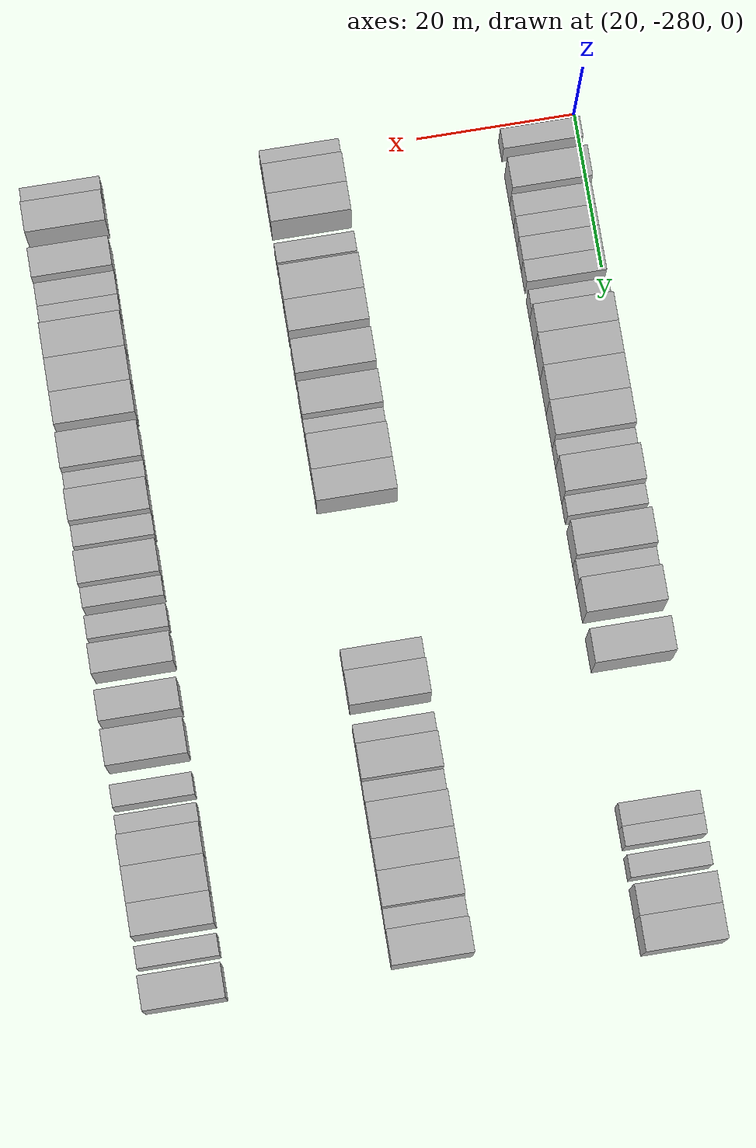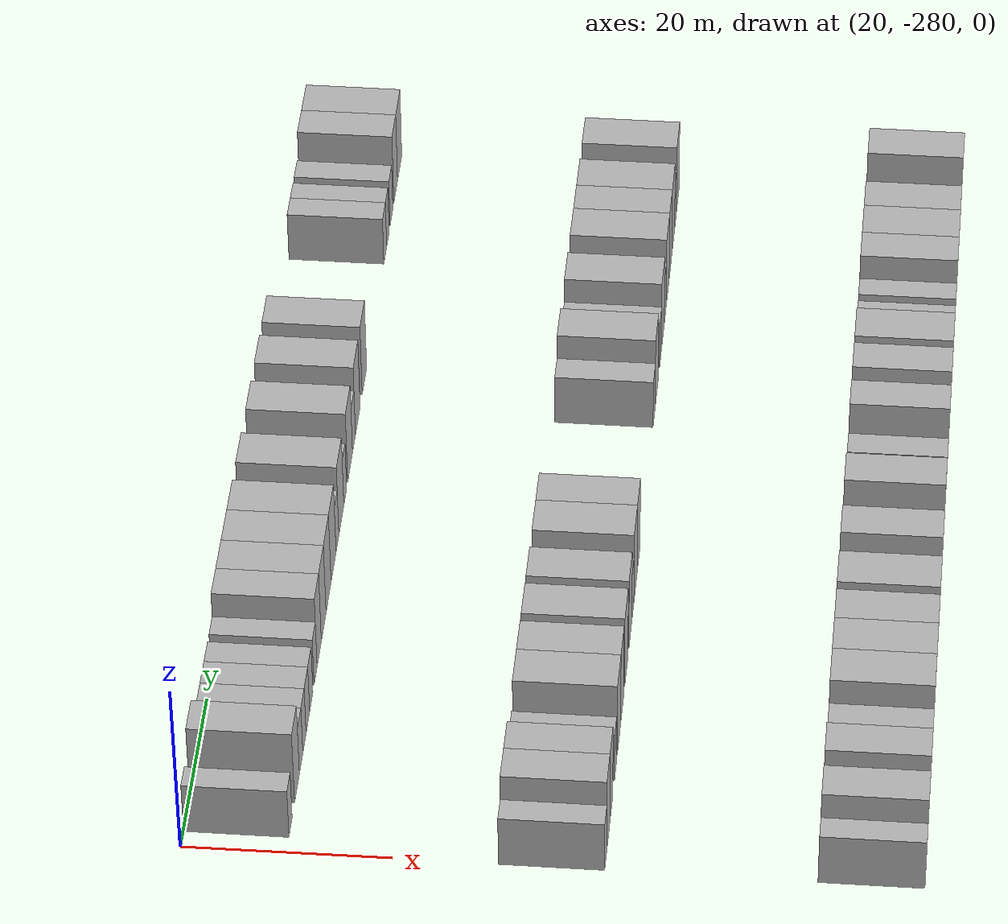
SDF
<sdf version="1.6">
 <world name="default">
  <model name="building_1">
   <static>1</static>
   <pose>25.0000 -276.7116 0 0.000000 0.000000 0.000000</pose>
   <link name="link">
    <pose>0 0 3.00 0 0 0</pose>
    <collision name="collision"><geometry><box><size>10.0000 2.5767 6.0000</size></box></geometry></collision>
    <visual name="visual">
     <cast_shadows>0</cast_shadows>
     <geometry><box><size>10.0000 2.5767 6.0000</size></box></geometry>
     <material>
      <script>
       <uri>model://HANNAS_wall/materials/scripts</uri>
       <uri>model://HANNAS_wall/materials/textures</uri>
       <name>vrc/HANNAS_wall</name>
      </script>
     </material>
    </visual>
   </link>
  </model>
  <model name="building_2">
   <static>1</static>
   <pose>25.0000 -271.4646 0 0.000000 0.000000 0.000000</pose>
   <link name="link">
    <pose>0 0 4.50 0 0 0</pose>
    <collision name="collision"><geometry><box><size>10.0000 3.9173 9.0000</size></box></geometry></collision>
    <visual name="visual">
     <cast_shadows>0</cast_shadows>
     <geometry><box><size>10.0000 3.9173 9.0000</size></box></geometry>
     <material>
      <script>
       <uri>model://HANNAS_wall/materials/scripts</uri>
       <uri>model://HANNAS_wall/materials/textures</uri>
       <name>vrc/HANNAS_wall</name>
      </script>
     </material>
    </visual>
   </link>
  </model>
  <model name="building_3">
   <static>1</static>
   <pose>25.0000 -268.0789 0 0.000000 0.000000 0.000000</pose>
   <link name="link">
    <pose>0 0 3.00 0 0 0</pose>
    <collision name="collision"><geometry><box><size>10.0000 2.8543 6.0000</size></box></geometry></collision>
    <visual name="visual">
     <cast_shadows>0</cast_shadows>
     <geometry><box><size>10.0000 2.8543 6.0000</size></box></geometry>
     <material>
      <script>
       <uri>model://HANNAS_wall/materials/scripts</uri>
       <uri>model://HANNAS_wall/materials/textures</uri>
       <name>vrc/HANNAS_wall</name>
      </script>
     </material>
    </visual>
   </link>
  </model>
  <model name="building_4">
   <static>1</static>
   <pose>25.0000 -265.3116 0 0.000000 0.000000 0.000000</pose>
   <link name="link">
    <pose>0 0 3.00 0 0 0</pose>
    <collision name="collision"><geometry><box><size>10.0000 2.6802 6.0000</size></box></geometry></collision>
    <visual name="visual">
     <cast_shadows>0</cast_shadows>
     <geometry><box><size>10.0000 2.6802 6.0000</size></box></geometry>
     <material>
      <script>
       <uri>model://HANNAS_wall/materials/scripts</uri>
       <uri>model://HANNAS_wall/materials/textures</uri>
       <name>vrc/HANNAS_wall</name>
      </script>
     </material>
    </visual>
   </link>
  </model>
  <model name="building_5">
   <static>1</static>
   <pose>25.0000 -262.4727 0 0.000000 0.000000 0.000000</pose>
   <link name="link">
    <pose>0 0 3.00 0 0 0</pose>
    <collision name="collision"><geometry><box><size>10.0000 2.9976 6.0000</size></box></geometry></collision>
    <visual name="visual">
     <cast_shadows>0</cast_shadows>
     <geometry><box><size>10.0000 2.9976 6.0000</size></box></geometry>
     <material>
      <script>
       <uri>model://HANNAS_wall/materials/scripts</uri>
       <uri>model://HANNAS_wall/materials/textures</uri>
       <name>vrc/HANNAS_wall</name>
      </script>
     </material>
    </visual>
   </link>
  </model>
  <model name="building_6">
   <static>1</static>
   <pose>25.0000 -259.5861 0 0.000000 0.000000 0.000000</pose>
   <link name="link">
    <pose>0 0 3.00 0 0 0</pose>
    <collision name="collision"><geometry><box><size>10.0000 2.7755 6.0000</size></box></geometry></collision>
    <visual name="visual">
     <cast_shadows>0</cast_shadows>
     <geometry><box><size>10.0000 2.7755 6.0000</size></box></geometry>
     <material>
      <script>
       <uri>model://HANNAS_wall/materials/scripts</uri>
       <uri>model://HANNAS_wall/materials/textures</uri>
       <name>vrc/HANNAS_wall</name>
      </script>
     </material>
    </visual>
   </link>
  </model>
  <model name="building_7">
   <static>1</static>
   <pose>25.0000 -255.9242 0 0.000000 0.000000 0.000000</pose>
   <link name="link">
    <pose>0 0 3.00 0 0 0</pose>
    <collision name="collision"><geometry><box><size>10.0000 2.5485 6.0000</size></box></geometry></collision>
    <visual name="visual">
     <cast_shadows>0</cast_shadows>
     <geometry><box><size>10.0000 2.5485 6.0000</size></box></geometry>
     <material>
      <script>
       <uri>model://HANNAS_wall/materials/scripts</uri>
       <uri>model://HANNAS_wall/materials/textures</uri>
       <name>vrc/HANNAS_wall</name>
      </script>
     </material>
    </visual>
   </link>
  </model>
  <model name="building_8">
   <static>1</static>
   <pose>25.0000 -252.8367 0 0.000000 0.000000 0.000000</pose>
   <link name="link">
    <pose>0 0 4.50 0 0 0</pose>
    <collision name="collision"><geometry><box><size>10.0000 3.6265 9.0000</size></box></geometry></collision>
    <visual name="visual">
     <cast_shadows>0</cast_shadows>
     <geometry><box><size>10.0000 3.6265 9.0000</size></box></geometry>
     <material>
      <script>
       <uri>model://HANNAS_wall/materials/scripts</uri>
       <uri>model://HANNAS_wall/materials/textures</uri>
       <name>vrc/HANNAS_wall</name>
      </script>
     </material>
    </visual>
   </link>
  </model>
  <model name="building_9">
   <static>1</static>
   <pose>25.0000 -248.9748 0 0.000000 0.000000 0.000000</pose>
   <link name="link">
    <pose>0 0 4.50 0 0 0</pose>
    <collision name="collision"><geometry><box><size>10.0000 4.0972 9.0000</size></box></geometry></collision>
    <visual name="visual">
     <cast_shadows>0</cast_shadows>
     <geometry><box><size>10.0000 4.0972 9.0000</size></box></geometry>
     <material>
      <script>
       <uri>model://HANNAS_wall/materials/scripts</uri>
       <uri>model://HANNAS_wall/materials/textures</uri>
       <name>vrc/HANNAS_wall</name>
      </script>
     </material>
    </visual>
   </link>
  </model>
  <model name="building_10">
   <static>1</static>
   <pose>25.0000 -244.7154 0 0.000000 0.000000 0.000000</pose>
   <link name="link">
    <pose>0 0 4.50 0 0 0</pose>
    <collision name="collision"><geometry><box><size>10.0000 4.4216 9.0000</size></box></geometry></collision>
    <visual name="visual">
     <cast_shadows>0</cast_shadows>
     <geometry><box><size>10.0000 4.4216 9.0000</size></box></geometry>
     <material>
      <script>
       <uri>model://HANNAS_wall/materials/scripts</uri>
       <uri>model://HANNAS_wall/materials/textures</uri>
       <name>vrc/HANNAS_wall</name>
      </script>
     </material>
    </visual>
   </link>
  </model>
  <model name="building_11">
   <static>1</static>
   <pose>25.0000 -240.3036 0 0.000000 0.000000 0.000000</pose>
   <link name="link">
    <pose>0 0 4.50 0 0 0</pose>
    <collision name="collision"><geometry><box><size>10.0000 4.4019 9.0000</size></box></geometry></collision>
    <visual name="visual">
     <cast_shadows>0</cast_shadows>
     <geometry><box><size>10.0000 4.4019 9.0000</size></box></geometry>
     <material>
      <script>
       <uri>model://HANNAS_wall/materials/scripts</uri>
       <uri>model://HANNAS_wall/materials/textures</uri>
       <name>vrc/HANNAS_wall</name>
      </script>
     </material>
    </visual>
   </link>
  </model>
  <model name="building_12">
   <static>1</static>
   <pose>25.0000 -236.8197 0 0.000000 0.000000 0.000000</pose>
   <link name="link">
    <pose>0 0 3.00 0 0 0</pose>
    <collision name="collision"><geometry><box><size>10.0000 2.5658 6.0000</size></box></geometry></collision>
    <visual name="visual">
     <cast_shadows>0</cast_shadows>
     <geometry><box><size>10.0000 2.5658 6.0000</size></box></geometry>
     <material>
      <script>
       <uri>model://HANNAS_wall/materials/scripts</uri>
       <uri>model://HANNAS_wall/materials/textures</uri>
       <name>vrc/HANNAS_wall</name>
      </script>
     </material>
    </visual>
   </link>
  </model>
  <model name="building_13">
   <static>1</static>
   <pose>25.0000 -233.3019 0 0.000000 0.000000 0.000000</pose>
   <link name="link">
    <pose>0 0 4.50 0 0 0</pose>
    <collision name="collision"><geometry><box><size>10.0000 4.4698 9.0000</size></box></geometry></collision>
    <visual name="visual">
     <cast_shadows>0</cast_shadows>
     <geometry><box><size>10.0000 4.4698 9.0000</size></box></geometry>
     <material>
      <script>
       <uri>model://HANNAS_wall/materials/scripts</uri>
       <uri>model://HANNAS_wall/materials/textures</uri>
       <name>vrc/HANNAS_wall</name>
      </script>
     </material>
    </visual>
   </link>
  </model>
  <model name="building_14">
   <static>1</static>
   <pose>25.0000 -229.7931 0 0.000000 0.000000 0.000000</pose>
   <link name="link">
    <pose>0 0 3.00 0 0 0</pose>
    <collision name="collision"><geometry><box><size>10.0000 2.5478 6.0000</size></box></geometry></collision>
    <visual name="visual">
     <cast_shadows>0</cast_shadows>
     <geometry><box><size>10.0000 2.5478 6.0000</size></box></geometry>
     <material>
      <script>
       <uri>model://HANNAS_wall/materials/scripts</uri>
       <uri>model://HANNAS_wall/materials/textures</uri>
       <name>vrc/HANNAS_wall</name>
      </script>
     </material>
    </visual>
   </link>
  </model>
  <model name="building_15">
   <static>1</static>
   <pose>25.0000 -225.3217 0 0.000000 0.000000 0.000000</pose>
   <link name="link">
    <pose>0 0 4.50 0 0 0</pose>
    <collision name="collision"><geometry><box><size>10.0000 4.3950 9.0000</size></box></geometry></collision>
    <visual name="visual">
     <cast_shadows>0</cast_shadows>
     <geometry><box><size>10.0000 4.3950 9.0000</size></box></geometry>
     <material>
      <script>
       <uri>model://HANNAS_wall/materials/scripts</uri>
       <uri>model://HANNAS_wall/materials/textures</uri>
       <name>vrc/HANNAS_wall</name>
      </script>
     </material>
    </visual>
   </link>
  </model>
  <model name="building_16">
   <static>1</static>
   <pose>25.0000 -221.7504 0 0.000000 0.000000 0.000000</pose>
   <link name="link">
    <pose>0 0 3.00 0 0 0</pose>
    <collision name="collision"><geometry><box><size>10.0000 2.7476 6.0000</size></box></geometry></collision>
    <visual name="visual">
     <cast_shadows>0</cast_shadows>
     <geometry><box><size>10.0000 2.7476 6.0000</size></box></geometry>
     <material>
      <script>
       <uri>model://HANNAS_wall/materials/scripts</uri>
       <uri>model://HANNAS_wall/materials/textures</uri>
       <name>vrc/HANNAS_wall</name>
      </script>
     </material>
    </visual>
   </link>
  </model>
  <model name="building_17">
   <static>1</static>
   <pose>25.0000 -218.2101 0 0.000000 0.000000 0.000000</pose>
   <link name="link">
    <pose>0 0 4.50 0 0 0</pose>
    <collision name="collision"><geometry><box><size>10.0000 4.3330 9.0000</size></box></geometry></collision>
    <visual name="visual">
     <cast_shadows>0</cast_shadows>
     <geometry><box><size>10.0000 4.3330 9.0000</size></box></geometry>
     <material>
      <script>
       <uri>model://HANNAS_wall/materials/scripts</uri>
       <uri>model://HANNAS_wall/materials/textures</uri>
       <name>vrc/HANNAS_wall</name>
      </script>
     </material>
    </visual>
   </link>
  </model>
  <model name="building_18">
   <static>1</static>
   <pose>25.0000 -211.9402 0 0.000000 0.000000 0.000000</pose>
   <link name="link">
    <pose>0 0 4.50 0 0 0</pose>
    <collision name="collision"><geometry><box><size>10.0000 4.2069 9.0000</size></box></geometry></collision>
    <visual name="visual">
     <cast_shadows>0</cast_shadows>
     <geometry><box><size>10.0000 4.2069 9.0000</size></box></geometry>
     <material>
      <script>
       <uri>model://HANNAS_wall/materials/scripts</uri>
       <uri>model://HANNAS_wall/materials/textures</uri>
       <name>vrc/HANNAS_wall</name>
      </script>
     </material>
    </visual>
   </link>
  </model>
  <model name="building_19">
   <static>1</static>
   <pose>25.0000 -191.6206 0 0.000000 0.000000 0.000000</pose>
   <link name="link">
    <pose>0 0 3.00 0 0 0</pose>
    <collision name="collision"><geometry><box><size>10.0000 2.8107 6.0000</size></box></geometry></collision>
    <visual name="visual">
     <cast_shadows>0</cast_shadows>
     <geometry><box><size>10.0000 2.8107 6.0000</size></box></geometry>
     <material>
      <script>
       <uri>model://HANNAS_wall/materials/scripts</uri>
       <uri>model://HANNAS_wall/materials/textures</uri>
       <name>vrc/HANNAS_wall</name>
      </script>
     </material>
    </visual>
   </link>
  </model>
  <model name="building_20">
   <static>1</static>
   <pose>25.0000 -188.9801 0 0.000000 0.000000 0.000000</pose>
   <link name="link">
    <pose>0 0 3.00 0 0 0</pose>
    <collision name="collision"><geometry><box><size>10.0000 2.4702 6.0000</size></box></geometry></collision>
    <visual name="visual">
     <cast_shadows>0</cast_shadows>
     <geometry><box><size>10.0000 2.4702 6.0000</size></box></geometry>
     <material>
      <script>
       <uri>model://HANNAS_wall/materials/scripts</uri>
       <uri>model://HANNAS_wall/materials/textures</uri>
       <name>vrc/HANNAS_wall</name>
      </script>
     </material>
    </visual>
   </link>
  </model>
  <model name="building_21">
   <static>1</static>
   <pose>25.0000 -185.3558 0 0.000000 0.000000 0.000000</pose>
   <link name="link">
    <pose>0 0 3.00 0 0 0</pose>
    <collision name="collision"><geometry><box><size>10.0000 2.7786 6.0000</size></box></geometry></collision>
    <visual name="visual">
     <cast_shadows>0</cast_shadows>
     <geometry><box><size>10.0000 2.7786 6.0000</size></box></geometry>
     <material>
      <script>
       <uri>model://HANNAS_wall/materials/scripts</uri>
       <uri>model://HANNAS_wall/materials/textures</uri>
       <name>vrc/HANNAS_wall</name>
      </script>
     </material>
    </visual>
   </link>
  </model>
  <model name="building_22">
   <static>1</static>
   <pose>25.0000 -181.0683 0 0.000000 0.000000 0.000000</pose>
   <link name="link">
    <pose>0 0 4.50 0 0 0</pose>
    <collision name="collision"><geometry><box><size>10.0000 3.7964 9.0000</size></box></geometry></collision>
    <visual name="visual">
     <cast_shadows>0</cast_shadows>
     <geometry><box><size>10.0000 3.7964 9.0000</size></box></geometry>
     <material>
      <script>
       <uri>model://HANNAS_wall/materials/scripts</uri>
       <uri>model://HANNAS_wall/materials/textures</uri>
       <name>vrc/HANNAS_wall</name>
      </script>
     </material>
    </visual>
   </link>
  </model>
  <model name="building_23">
   <static>1</static>
   <pose>25.0000 -176.9967 0 0.000000 0.000000 0.000000</pose>
   <link name="link">
    <pose>0 0 4.50 0 0 0</pose>
    <collision name="collision"><geometry><box><size>10.0000 4.3467 9.0000</size></box></geometry></collision>
    <visual name="visual">
     <cast_shadows>0</cast_shadows>
     <geometry><box><size>10.0000 4.3467 9.0000</size></box></geometry>
     <material>
      <script>
       <uri>model://HANNAS_wall/materials/scripts</uri>
       <uri>model://HANNAS_wall/materials/textures</uri>
       <name>vrc/HANNAS_wall</name>
      </script>
     </material>
    </visual>
   </link>
  </model>
  <model name="building_140">
   <static>1</static>
   <pose>55.0000 -278.7158 0 0.000000 0.000000 0.000000</pose>
   <link name="link">
    <pose>0 0 3.00 0 0 0</pose>
    <collision name="collision"><geometry><box><size>10.0000 2.5685 6.0000</size></box></geometry></collision>
    <visual name="visual">
     <cast_shadows>0</cast_shadows>
     <geometry><box><size>10.0000 2.5685 6.0000</size></box></geometry>
     <material>
      <script>
       <uri>model://HANNAS_wall/materials/scripts</uri>
       <uri>model://HANNAS_wall/materials/textures</uri>
       <name>vrc/HANNAS_wall</name>
      </script>
     </material>
    </visual>
   </link>
  </model>
  <model name="building_141">
   <static>1</static>
   <pose>55.0000 -275.5282 0 0.000000 0.000000 0.000000</pose>
   <link name="link">
    <pose>0 0 4.50 0 0 0</pose>
    <collision name="collision"><geometry><box><size>10.0000 3.8067 9.0000</size></box></geometry></collision>
    <visual name="visual">
     <cast_shadows>0</cast_shadows>
     <geometry><box><size>10.0000 3.8067 9.0000</size></box></geometry>
     <material>
      <script>
       <uri>model://HANNAS_wall/materials/scripts</uri>
       <uri>model://HANNAS_wall/materials/textures</uri>
       <name>vrc/HANNAS_wall</name>
      </script>
     </material>
    </visual>
   </link>
  </model>
  <model name="building_142">
   <static>1</static>
   <pose>55.0000 -271.8176 0 0.000000 0.000000 0.000000</pose>
   <link name="link">
    <pose>0 0 4.50 0 0 0</pose>
    <collision name="collision"><geometry><box><size>10.0000 3.6144 9.0000</size></box></geometry></collision>
    <visual name="visual">
     <cast_shadows>0</cast_shadows>
     <geometry><box><size>10.0000 3.6144 9.0000</size></box></geometry>
     <material>
      <script>
       <uri>model://HANNAS_wall/materials/scripts</uri>
       <uri>model://HANNAS_wall/materials/textures</uri>
       <name>vrc/HANNAS_wall</name>
      </script>
     </material>
    </visual>
   </link>
  </model>
  <model name="building_143">
   <static>1</static>
   <pose>55.0000 -266.7503 0 0.000000 0.000000 0.000000</pose>
   <link name="link">
    <pose>0 0 3.00 0 0 0</pose>
    <collision name="collision"><geometry><box><size>10.0000 2.5202 6.0000</size></box></geometry></collision>
    <visual name="visual">
     <cast_shadows>0</cast_shadows>
     <geometry><box><size>10.0000 2.5202 6.0000</size></box></geometry>
     <material>
      <script>
       <uri>model://HANNAS_wall/materials/scripts</uri>
       <uri>model://HANNAS_wall/materials/textures</uri>
       <name>vrc/HANNAS_wall</name>
      </script>
     </material>
    </visual>
   </link>
  </model>
  <model name="building_144">
   <static>1</static>
   <pose>55.0000 -262.2801 0 0.000000 0.000000 0.000000</pose>
   <link name="link">
    <pose>0 0 4.50 0 0 0</pose>
    <collision name="collision"><geometry><box><size>10.0000 4.4203 9.0000</size></box></geometry></collision>
    <visual name="visual">
     <cast_shadows>0</cast_shadows>
     <geometry><box><size>10.0000 4.4203 9.0000</size></box></geometry>
     <material>
      <script>
       <uri>model://HANNAS_wall/materials/scripts</uri>
       <uri>model://HANNAS_wall/materials/textures</uri>
       <name>vrc/HANNAS_wall</name>
      </script>
     </material>
    </visual>
   </link>
  </model>
  <model name="building_145">
   <static>1</static>
   <pose>55.0000 -258.0678 0 0.000000 0.000000 0.000000</pose>
   <link name="link">
    <pose>0 0 4.50 0 0 0</pose>
    <collision name="collision"><geometry><box><size>10.0000 4.0042 9.0000</size></box></geometry></collision>
    <visual name="visual">
     <cast_shadows>0</cast_shadows>
     <geometry><box><size>10.0000 4.0042 9.0000</size></box></geometry>
     <material>
      <script>
       <uri>model://HANNAS_wall/materials/scripts</uri>
       <uri>model://HANNAS_wall/materials/textures</uri>
       <name>vrc/HANNAS_wall</name>
      </script>
     </material>
    </visual>
   </link>
  </model>
  <model name="building_146">
   <static>1</static>
   <pose>55.0000 -252.9015 0 0.000000 0.000000 0.000000</pose>
   <link name="link">
    <pose>0 0 4.50 0 0 0</pose>
    <collision name="collision"><geometry><box><size>10.0000 4.3285 9.0000</size></box></geometry></collision>
    <visual name="visual">
     <cast_shadows>0</cast_shadows>
     <geometry><box><size>10.0000 4.3285 9.0000</size></box></geometry>
     <material>
      <script>
       <uri>model://HANNAS_wall/materials/scripts</uri>
       <uri>model://HANNAS_wall/materials/textures</uri>
       <name>vrc/HANNAS_wall</name>
      </script>
     </material>
    </visual>
   </link>
  </model>
  <model name="building_147">
   <static>1</static>
   <pose>55.0000 -247.6392 0 0.000000 0.000000 0.000000</pose>
   <link name="link">
    <pose>0 0 4.50 0 0 0</pose>
    <collision name="collision"><geometry><box><size>10.0000 4.1962 9.0000</size></box></geometry></collision>
    <visual name="visual">
     <cast_shadows>0</cast_shadows>
     <geometry><box><size>10.0000 4.1962 9.0000</size></box></geometry>
     <material>
      <script>
       <uri>model://HANNAS_wall/materials/scripts</uri>
       <uri>model://HANNAS_wall/materials/textures</uri>
       <name>vrc/HANNAS_wall</name>
      </script>
     </material>
    </visual>
   </link>
  </model>
  <model name="building_148">
   <static>1</static>
   <pose>55.0000 -244.3315 0 0.000000 0.000000 0.000000</pose>
   <link name="link">
    <pose>0 0 3.00 0 0 0</pose>
    <collision name="collision"><geometry><box><size>10.0000 2.4191 6.0000</size></box></geometry></collision>
    <visual name="visual">
     <cast_shadows>0</cast_shadows>
     <geometry><box><size>10.0000 2.4191 6.0000</size></box></geometry>
     <material>
      <script>
       <uri>model://HANNAS_wall/materials/scripts</uri>
       <uri>model://HANNAS_wall/materials/textures</uri>
       <name>vrc/HANNAS_wall</name>
      </script>
     </material>
    </visual>
   </link>
  </model>
  <model name="building_149">
   <static>1</static>
   <pose>55.0000 -240.9022 0 0.000000 0.000000 0.000000</pose>
   <link name="link">
    <pose>0 0 4.50 0 0 0</pose>
    <collision name="collision"><geometry><box><size>10.0000 4.4395 9.0000</size></box></geometry></collision>
    <visual name="visual">
     <cast_shadows>0</cast_shadows>
     <geometry><box><size>10.0000 4.4395 9.0000</size></box></geometry>
     <material>
      <script>
       <uri>model://HANNAS_wall/materials/scripts</uri>
       <uri>model://HANNAS_wall/materials/textures</uri>
       <name>vrc/HANNAS_wall</name>
      </script>
     </material>
    </visual>
   </link>
  </model>
  <model name="building_150">
   <static>1</static>
   <pose>55.0000 -236.7105 0 0.000000 0.000000 0.000000</pose>
   <link name="link">
    <pose>0 0 4.50 0 0 0</pose>
    <collision name="collision"><geometry><box><size>10.0000 3.9438 9.0000</size></box></geometry></collision>
    <visual name="visual">
     <cast_shadows>0</cast_shadows>
     <geometry><box><size>10.0000 3.9438 9.0000</size></box></geometry>
     <material>
      <script>
       <uri>model://HANNAS_wall/materials/scripts</uri>
       <uri>model://HANNAS_wall/materials/textures</uri>
       <name>vrc/HANNAS_wall</name>
      </script>
     </material>
    </visual>
   </link>
  </model>
  <model name="building_151">
   <static>1</static>
   <pose>55.0000 -215.2692 0 0.000000 0.000000 0.000000</pose>
   <link name="link">
    <pose>0 0 3.00 0 0 0</pose>
    <collision name="collision"><geometry><box><size>10.0000 2.9797 6.0000</size></box></geometry></collision>
    <visual name="visual">
     <cast_shadows>0</cast_shadows>
     <geometry><box><size>10.0000 2.9797 6.0000</size></box></geometry>
     <material>
      <script>
       <uri>model://HANNAS_wall/materials/scripts</uri>
       <uri>model://HANNAS_wall/materials/textures</uri>
       <name>vrc/HANNAS_wall</name>
      </script>
     </material>
    </visual>
   </link>
  </model>
  <model name="building_152">
   <static>1</static>
   <pose>55.0000 -211.6312 0 0.000000 0.000000 0.000000</pose>
   <link name="link">
    <pose>0 0 4.50 0 0 0</pose>
    <collision name="collision"><geometry><box><size>10.0000 4.2963 9.0000</size></box></geometry></collision>
    <visual name="visual">
     <cast_shadows>0</cast_shadows>
     <geometry><box><size>10.0000 4.2963 9.0000</size></box></geometry>
     <material>
      <script>
       <uri>model://HANNAS_wall/materials/scripts</uri>
       <uri>model://HANNAS_wall/materials/textures</uri>
       <name>vrc/HANNAS_wall</name>
      </script>
     </material>
    </visual>
   </link>
  </model>
  <model name="building_153">
   <static>1</static>
   <pose>55.0000 -206.1670 0 0.000000 0.000000 0.000000</pose>
   <link name="link">
    <pose>0 0 3.00 0 0 0</pose>
    <collision name="collision"><geometry><box><size>10.0000 2.6321 6.0000</size></box></geometry></collision>
    <visual name="visual">
     <cast_shadows>0</cast_shadows>
     <geometry><box><size>10.0000 2.6321 6.0000</size></box></geometry>
     <material>
      <script>
       <uri>model://HANNAS_wall/materials/scripts</uri>
       <uri>model://HANNAS_wall/materials/textures</uri>
       <name>vrc/HANNAS_wall</name>
      </script>
     </material>
    </visual>
   </link>
  </model>
  <model name="building_154">
   <static>1</static>
   <pose>55.0000 -202.6768 0 0.000000 0.000000 0.000000</pose>
   <link name="link">
    <pose>0 0 4.50 0 0 0</pose>
    <collision name="collision"><geometry><box><size>10.0000 4.3485 9.0000</size></box></geometry></collision>
    <visual name="visual">
     <cast_shadows>0</cast_shadows>
     <geometry><box><size>10.0000 4.3485 9.0000</size></box></geometry>
     <material>
      <script>
       <uri>model://HANNAS_wall/materials/scripts</uri>
       <uri>model://HANNAS_wall/materials/textures</uri>
       <name>vrc/HANNAS_wall</name>
      </script>
     </material>
    </visual>
   </link>
  </model>
  <model name="building_155">
   <static>1</static>
   <pose>55.0000 -199.1035 0 0.000000 0.000000 0.000000</pose>
   <link name="link">
    <pose>0 0 3.00 0 0 0</pose>
    <collision name="collision"><geometry><box><size>10.0000 2.7980 6.0000</size></box></geometry></collision>
    <visual name="visual">
     <cast_shadows>0</cast_shadows>
     <geometry><box><size>10.0000 2.7980 6.0000</size></box></geometry>
     <material>
      <script>
       <uri>model://HANNAS_wall/materials/scripts</uri>
       <uri>model://HANNAS_wall/materials/textures</uri>
       <name>vrc/HANNAS_wall</name>
      </script>
     </material>
    </visual>
   </link>
  </model>
  <model name="building_156">
   <static>1</static>
   <pose>55.0000 -195.4867 0 0.000000 0.000000 0.000000</pose>
   <link name="link">
    <pose>0 0 4.50 0 0 0</pose>
    <collision name="collision"><geometry><box><size>10.0000 4.4357 9.0000</size></box></geometry></collision>
    <visual name="visual">
     <cast_shadows>0</cast_shadows>
     <geometry><box><size>10.0000 4.4357 9.0000</size></box></geometry>
     <material>
      <script>
       <uri>model://HANNAS_wall/materials/scripts</uri>
       <uri>model://HANNAS_wall/materials/textures</uri>
       <name>vrc/HANNAS_wall</name>
      </script>
     </material>
    </visual>
   </link>
  </model>
  <model name="building_157">
   <static>1</static>
   <pose>55.0000 -191.3477 0 0.000000 0.000000 0.000000</pose>
   <link name="link">
    <pose>0 0 4.50 0 0 0</pose>
    <collision name="collision"><geometry><box><size>10.0000 3.8424 9.0000</size></box></geometry></collision>
    <visual name="visual">
     <cast_shadows>0</cast_shadows>
     <geometry><box><size>10.0000 3.8424 9.0000</size></box></geometry>
     <material>
      <script>
       <uri>model://HANNAS_wall/materials/scripts</uri>
       <uri>model://HANNAS_wall/materials/textures</uri>
       <name>vrc/HANNAS_wall</name>
      </script>
     </material>
    </visual>
   </link>
  </model>
  <model name="building_158">
   <static>1</static>
   <pose>55.0000 -187.2485 0 0.000000 0.000000 0.000000</pose>
   <link name="link">
    <pose>0 0 4.50 0 0 0</pose>
    <collision name="collision"><geometry><box><size>10.0000 4.3559 9.0000</size></box></geometry></collision>
    <visual name="visual">
     <cast_shadows>0</cast_shadows>
     <geometry><box><size>10.0000 4.3559 9.0000</size></box></geometry>
     <material>
      <script>
       <uri>model://HANNAS_wall/materials/scripts</uri>
       <uri>model://HANNAS_wall/materials/textures</uri>
       <name>vrc/HANNAS_wall</name>
      </script>
     </material>
    </visual>
   </link>
  </model>
  <model name="building_159">
   <static>1</static>
   <pose>55.0000 -183.7458 0 0.000000 0.000000 0.000000</pose>
   <link name="link">
    <pose>0 0 3.00 0 0 0</pose>
    <collision name="collision"><geometry><box><size>10.0000 2.6496 6.0000</size></box></geometry></collision>
    <visual name="visual">
     <cast_shadows>0</cast_shadows>
     <geometry><box><size>10.0000 2.6496 6.0000</size></box></geometry>
     <material>
      <script>
       <uri>model://HANNAS_wall/materials/scripts</uri>
       <uri>model://HANNAS_wall/materials/textures</uri>
       <name>vrc/HANNAS_wall</name>
      </script>
     </material>
    </visual>
   </link>
  </model>
  <model name="building_160">
   <static>1</static>
   <pose>55.0000 -180.2444 0 0.000000 0.000000 0.000000</pose>
   <link name="link">
    <pose>0 0 4.50 0 0 0</pose>
    <collision name="collision"><geometry><box><size>10.0000 4.3532 9.0000</size></box></geometry></collision>
    <visual name="visual">
     <cast_shadows>0</cast_shadows>
     <geometry><box><size>10.0000 4.3532 9.0000</size></box></geometry>
     <material>
      <script>
       <uri>model://HANNAS_wall/materials/scripts</uri>
       <uri>model://HANNAS_wall/materials/textures</uri>
       <name>vrc/HANNAS_wall</name>
      </script>
     </material>
    </visual>
   </link>
  </model>
  <model name="building_280">
   <static>1</static>
   <pose>85.0000 -278.7177 0 0.000000 0.000000 0.000000</pose>
   <link name="link">
    <pose>0 0 3.00 0 0 0</pose>
    <collision name="collision"><geometry><box><size>10.0000 2.5645 6.0000</size></box></geometry></collision>
    <visual name="visual">
     <cast_shadows>0</cast_shadows>
     <geometry><box><size>10.0000 2.5645 6.0000</size></box></geometry>
     <material>
      <script>
       <uri>model://HANNAS_wall/materials/scripts</uri>
       <uri>model://HANNAS_wall/materials/textures</uri>
       <name>vrc/HANNAS_wall</name>
      </script>
     </material>
    </visual>
   </link>
  </model>
  <model name="building_281">
   <static>1</static>
   <pose>85.0000 -275.4808 0 0.000000 0.000000 0.000000</pose>
   <link name="link">
    <pose>0 0 4.50 0 0 0</pose>
    <collision name="collision"><geometry><box><size>10.0000 3.9093 9.0000</size></box></geometry></collision>
    <visual name="visual">
     <cast_shadows>0</cast_shadows>
     <geometry><box><size>10.0000 3.9093 9.0000</size></box></geometry>
     <material>
      <script>
       <uri>model://HANNAS_wall/materials/scripts</uri>
       <uri>model://HANNAS_wall/materials/textures</uri>
       <name>vrc/HANNAS_wall</name>
      </script>
     </material>
    </visual>
   </link>
  </model>
  <model name="building_282">
   <static>1</static>
   <pose>85.0000 -269.6559 0 0.000000 0.000000 0.000000</pose>
   <link name="link">
    <pose>0 0 4.50 0 0 0</pose>
    <collision name="collision"><geometry><box><size>10.0000 3.7406 9.0000</size></box></geometry></collision>
    <visual name="visual">
     <cast_shadows>0</cast_shadows>
     <geometry><box><size>10.0000 3.7406 9.0000</size></box></geometry>
     <material>
      <script>
       <uri>model://HANNAS_wall/materials/scripts</uri>
       <uri>model://HANNAS_wall/materials/textures</uri>
       <name>vrc/HANNAS_wall</name>
      </script>
     </material>
    </visual>
   </link>
  </model>
  <model name="building_283">
   <static>1</static>
   <pose>85.0000 -266.3055 0 0.000000 0.000000 0.000000</pose>
   <link name="link">
    <pose>0 0 3.00 0 0 0</pose>
    <collision name="collision"><geometry><box><size>10.0000 2.9601 6.0000</size></box></geometry></collision>
    <visual name="visual">
     <cast_shadows>0</cast_shadows>
     <geometry><box><size>10.0000 2.9601 6.0000</size></box></geometry>
     <material>
      <script>
       <uri>model://HANNAS_wall/materials/scripts</uri>
       <uri>model://HANNAS_wall/materials/textures</uri>
       <name>vrc/HANNAS_wall</name>
      </script>
     </material>
    </visual>
   </link>
  </model>
  <model name="building_284">
   <static>1</static>
   <pose>85.0000 -263.4182 0 0.000000 0.000000 0.000000</pose>
   <link name="link">
    <pose>0 0 3.00 0 0 0</pose>
    <collision name="collision"><geometry><box><size>10.0000 2.8144 6.0000</size></box></geometry></collision>
    <visual name="visual">
     <cast_shadows>0</cast_shadows>
     <geometry><box><size>10.0000 2.8144 6.0000</size></box></geometry>
     <material>
      <script>
       <uri>model://HANNAS_wall/materials/scripts</uri>
       <uri>model://HANNAS_wall/materials/textures</uri>
       <name>vrc/HANNAS_wall</name>
      </script>
     </material>
    </visual>
   </link>
  </model>
  <model name="building_285">
   <static>1</static>
   <pose>85.0000 -259.7780 0 0.000000 0.000000 0.000000</pose>
   <link name="link">
    <pose>0 0 4.50 0 0 0</pose>
    <collision name="collision"><geometry><box><size>10.0000 4.4659 9.0000</size></box></geometry></collision>
    <visual name="visual">
     <cast_shadows>0</cast_shadows>
     <geometry><box><size>10.0000 4.4659 9.0000</size></box></geometry>
     <material>
      <script>
       <uri>model://HANNAS_wall/materials/scripts</uri>
       <uri>model://HANNAS_wall/materials/textures</uri>
       <name>vrc/HANNAS_wall</name>
      </script>
     </material>
    </visual>
   </link>
  </model>
  <model name="building_286">
   <static>1</static>
   <pose>85.0000 -255.3976 0 0.000000 0.000000 0.000000</pose>
   <link name="link">
    <pose>0 0 4.50 0 0 0</pose>
    <collision name="collision"><geometry><box><size>10.0000 4.2950 9.0000</size></box></geometry></collision>
    <visual name="visual">
     <cast_shadows>0</cast_shadows>
     <geometry><box><size>10.0000 4.2950 9.0000</size></box></geometry>
     <material>
      <script>
       <uri>model://HANNAS_wall/materials/scripts</uri>
       <uri>model://HANNAS_wall/materials/textures</uri>
       <name>vrc/HANNAS_wall</name>
      </script>
     </material>
    </visual>
   </link>
  </model>
  <model name="building_287">
   <static>1</static>
   <pose>85.0000 -251.2191 0 0.000000 0.000000 0.000000</pose>
   <link name="link">
    <pose>0 0 4.50 0 0 0</pose>
    <collision name="collision"><geometry><box><size>10.0000 4.0620 9.0000</size></box></geometry></collision>
    <visual name="visual">
     <cast_shadows>0</cast_shadows>
     <geometry><box><size>10.0000 4.0620 9.0000</size></box></geometry>
     <material>
      <script>
       <uri>model://HANNAS_wall/materials/scripts</uri>
       <uri>model://HANNAS_wall/materials/textures</uri>
       <name>vrc/HANNAS_wall</name>
      </script>
     </material>
    </visual>
   </link>
  </model>
  <model name="building_288">
   <static>1</static>
   <pose>85.0000 -245.9455 0 0.000000 0.000000 0.000000</pose>
   <link name="link">
    <pose>0 0 4.50 0 0 0</pose>
    <collision name="collision"><geometry><box><size>10.0000 4.4852 9.0000</size></box></geometry></collision>
    <visual name="visual">
     <cast_shadows>0</cast_shadows>
     <geometry><box><size>10.0000 4.4852 9.0000</size></box></geometry>
     <material>
      <script>
       <uri>model://HANNAS_wall/materials/scripts</uri>
       <uri>model://HANNAS_wall/materials/textures</uri>
       <name>vrc/HANNAS_wall</name>
      </script>
     </material>
    </visual>
   </link>
  </model>
  <model name="building_289">
   <static>1</static>
   <pose>85.0000 -242.3828 0 0.000000 0.000000 0.000000</pose>
   <link name="link">
    <pose>0 0 3.00 0 0 0</pose>
    <collision name="collision"><geometry><box><size>10.0000 2.6401 6.0000</size></box></geometry></collision>
    <visual name="visual">
     <cast_shadows>0</cast_shadows>
     <geometry><box><size>10.0000 2.6401 6.0000</size></box></geometry>
     <material>
      <script>
       <uri>model://HANNAS_wall/materials/scripts</uri>
       <uri>model://HANNAS_wall/materials/textures</uri>
       <name>vrc/HANNAS_wall</name>
      </script>
     </material>
    </visual>
   </link>
  </model>
  <model name="building_290">
   <static>1</static>
   <pose>85.0000 -239.0677 0 0.000000 0.000000 0.000000</pose>
   <link name="link">
    <pose>0 0 4.50 0 0 0</pose>
    <collision name="collision"><geometry><box><size>10.0000 3.9901 9.0000</size></box></geometry></collision>
    <visual name="visual">
     <cast_shadows>0</cast_shadows>
     <geometry><box><size>10.0000 3.9901 9.0000</size></box></geometry>
     <material>
      <script>
       <uri>model://HANNAS_wall/materials/scripts</uri>
       <uri>model://HANNAS_wall/materials/textures</uri>
       <name>vrc/HANNAS_wall</name>
      </script>
     </material>
    </visual>
   </link>
  </model>
  <model name="building_291">
   <static>1</static>
   <pose>85.0000 -235.7290 0 0.000000 0.000000 0.000000</pose>
   <link name="link">
    <pose>0 0 3.00 0 0 0</pose>
    <collision name="collision"><geometry><box><size>10.0000 2.6873 6.0000</size></box></geometry></collision>
    <visual name="visual">
     <cast_shadows>0</cast_shadows>
     <geometry><box><size>10.0000 2.6873 6.0000</size></box></geometry>
     <material>
      <script>
       <uri>model://HANNAS_wall/materials/scripts</uri>
       <uri>model://HANNAS_wall/materials/textures</uri>
       <name>vrc/HANNAS_wall</name>
      </script>
     </material>
    </visual>
   </link>
  </model>
  <model name="building_292">
   <static>1</static>
   <pose>85.0000 -231.3481 0 0.000000 0.000000 0.000000</pose>
   <link name="link">
    <pose>0 0 4.50 0 0 0</pose>
    <collision name="collision"><geometry><box><size>10.0000 4.0745 9.0000</size></box></geometry></collision>
    <visual name="visual">
     <cast_shadows>0</cast_shadows>
     <geometry><box><size>10.0000 4.0745 9.0000</size></box></geometry>
     <material>
      <script>
       <uri>model://HANNAS_wall/materials/scripts</uri>
       <uri>model://HANNAS_wall/materials/textures</uri>
       <name>vrc/HANNAS_wall</name>
      </script>
     </material>
    </visual>
   </link>
  </model>
  <model name="building_293">
   <static>1</static>
   <pose>85.0000 -228.0592 0 0.000000 0.000000 0.000000</pose>
   <link name="link">
    <pose>0 0 3.00 0 0 0</pose>
    <collision name="collision"><geometry><box><size>10.0000 2.5033 6.0000</size></box></geometry></collision>
    <visual name="visual">
     <cast_shadows>0</cast_shadows>
     <geometry><box><size>10.0000 2.5033 6.0000</size></box></geometry>
     <material>
      <script>
       <uri>model://HANNAS_wall/materials/scripts</uri>
       <uri>model://HANNAS_wall/materials/textures</uri>
       <name>vrc/HANNAS_wall</name>
      </script>
     </material>
    </visual>
   </link>
  </model>
  <model name="building_294">
   <static>1</static>
   <pose>85.0000 -224.3742 0 0.000000 0.000000 0.000000</pose>
   <link name="link">
    <pose>0 0 3.00 0 0 0</pose>
    <collision name="collision"><geometry><box><size>10.0000 2.8668 6.0000</size></box></geometry></collision>
    <visual name="visual">
     <cast_shadows>0</cast_shadows>
     <geometry><box><size>10.0000 2.8668 6.0000</size></box></geometry>
     <material>
      <script>
       <uri>model://HANNAS_wall/materials/scripts</uri>
       <uri>model://HANNAS_wall/materials/textures</uri>
       <name>vrc/HANNAS_wall</name>
      </script>
     </material>
    </visual>
   </link>
  </model>
  <model name="building_295">
   <static>1</static>
   <pose>85.0000 -220.0855 0 0.000000 0.000000 0.000000</pose>
   <link name="link">
    <pose>0 0 4.50 0 0 0</pose>
    <collision name="collision"><geometry><box><size>10.0000 3.7106 9.0000</size></box></geometry></collision>
    <visual name="visual">
     <cast_shadows>0</cast_shadows>
     <geometry><box><size>10.0000 3.7106 9.0000</size></box></geometry>
     <material>
      <script>
       <uri>model://HANNAS_wall/materials/scripts</uri>
       <uri>model://HANNAS_wall/materials/textures</uri>
       <name>vrc/HANNAS_wall</name>
      </script>
     </material>
    </visual>
   </link>
  </model>
  <model name="building_296">
   <static>1</static>
   <pose>85.0000 -214.3303 0 0.000000 0.000000 0.000000</pose>
   <link name="link">
    <pose>0 0 4.50 0 0 0</pose>
    <collision name="collision"><geometry><box><size>10.0000 3.7998 9.0000</size></box></geometry></collision>
    <visual name="visual">
     <cast_shadows>0</cast_shadows>
     <geometry><box><size>10.0000 3.7998 9.0000</size></box></geometry>
     <material>
      <script>
       <uri>model://HANNAS_wall/materials/scripts</uri>
       <uri>model://HANNAS_wall/materials/textures</uri>
       <name>vrc/HANNAS_wall</name>
      </script>
     </material>
    </visual>
   </link>
  </model>
  <model name="building_297">
   <static>1</static>
   <pose>85.0000 -209.2109 0 0.000000 0.000000 0.000000</pose>
   <link name="link">
    <pose>0 0 4.50 0 0 0</pose>
    <collision name="collision"><geometry><box><size>10.0000 4.4391 9.0000</size></box></geometry></collision>
    <visual name="visual">
     <cast_shadows>0</cast_shadows>
     <geometry><box><size>10.0000 4.4391 9.0000</size></box></geometry>
     <material>
      <script>
       <uri>model://HANNAS_wall/materials/scripts</uri>
       <uri>model://HANNAS_wall/materials/textures</uri>
       <name>vrc/HANNAS_wall</name>
      </script>
     </material>
    </visual>
   </link>
  </model>
  <model name="building_298">
   <static>1</static>
   <pose>85.0000 -203.6233 0 0.000000 0.000000 0.000000</pose>
   <link name="link">
    <pose>0 0 3.00 0 0 0</pose>
    <collision name="collision"><geometry><box><size>10.0000 2.7361 6.0000</size></box></geometry></collision>
    <visual name="visual">
     <cast_shadows>0</cast_shadows>
     <geometry><box><size>10.0000 2.7361 6.0000</size></box></geometry>
     <material>
      <script>
       <uri>model://HANNAS_wall/materials/scripts</uri>
       <uri>model://HANNAS_wall/materials/textures</uri>
       <name>vrc/HANNAS_wall</name>
      </script>
     </material>
    </visual>
   </link>
  </model>
  <model name="building_299">
   <static>1</static>
   <pose>85.0000 -199.9662 0 0.000000 0.000000 0.000000</pose>
   <link name="link">
    <pose>0 0 3.00 0 0 0</pose>
    <collision name="collision"><geometry><box><size>10.0000 2.5782 6.0000</size></box></geometry></collision>
    <visual name="visual">
     <cast_shadows>0</cast_shadows>
     <geometry><box><size>10.0000 2.5782 6.0000</size></box></geometry>
     <material>
      <script>
       <uri>model://HANNAS_wall/materials/scripts</uri>
       <uri>model://HANNAS_wall/materials/textures</uri>
       <name>vrc/HANNAS_wall</name>
      </script>
     </material>
    </visual>
   </link>
  </model>
  <model name="building_300">
   <static>1</static>
   <pose>85.0000 -196.7445 0 0.000000 0.000000 0.000000</pose>
   <link name="link">
    <pose>0 0 4.50 0 0 0</pose>
    <collision name="collision"><geometry><box><size>10.0000 3.8653 9.0000</size></box></geometry></collision>
    <visual name="visual">
     <cast_shadows>0</cast_shadows>
     <geometry><box><size>10.0000 3.8653 9.0000</size></box></geometry>
     <material>
      <script>
       <uri>model://HANNAS_wall/materials/scripts</uri>
       <uri>model://HANNAS_wall/materials/textures</uri>
       <name>vrc/HANNAS_wall</name>
      </script>
     </material>
    </visual>
   </link>
  </model>
  <model name="building_301">
   <static>1</static>
   <pose>85.0000 -192.5927 0 0.000000 0.000000 0.000000</pose>
   <link name="link">
    <pose>0 0 4.50 0 0 0</pose>
    <collision name="collision"><geometry><box><size>10.0000 4.4381 9.0000</size></box></geometry></collision>
    <visual name="visual">
     <cast_shadows>0</cast_shadows>
     <geometry><box><size>10.0000 4.4381 9.0000</size></box></geometry>
     <material>
      <script>
       <uri>model://HANNAS_wall/materials/scripts</uri>
       <uri>model://HANNAS_wall/materials/textures</uri>
       <name>vrc/HANNAS_wall</name>
      </script>
     </material>
    </visual>
   </link>
  </model>
  <model name="building_302">
   <static>1</static>
   <pose>85.0000 -188.3871 0 0.000000 0.000000 0.000000</pose>
   <link name="link">
    <pose>0 0 4.50 0 0 0</pose>
    <collision name="collision"><geometry><box><size>10.0000 3.9732 9.0000</size></box></geometry></collision>
    <visual name="visual">
     <cast_shadows>0</cast_shadows>
     <geometry><box><size>10.0000 3.9732 9.0000</size></box></geometry>
     <material>
      <script>
       <uri>model://HANNAS_wall/materials/scripts</uri>
       <uri>model://HANNAS_wall/materials/textures</uri>
       <name>vrc/HANNAS_wall</name>
      </script>
     </material>
    </visual>
   </link>
  </model>
  <model name="building_303">
   <static>1</static>
   <pose>85.0000 -184.0668 0 0.000000 0.000000 0.000000</pose>
   <link name="link">
    <pose>0 0 3.00 0 0 0</pose>
    <collision name="collision"><geometry><box><size>10.0000 2.6674 6.0000</size></box></geometry></collision>
    <visual name="visual">
     <cast_shadows>0</cast_shadows>
     <geometry><box><size>10.0000 2.6674 6.0000</size></box></geometry>
     <material>
      <script>
       <uri>model://HANNAS_wall/materials/scripts</uri>
       <uri>model://HANNAS_wall/materials/textures</uri>
       <name>vrc/HANNAS_wall</name>
      </script>
     </material>
    </visual>
   </link>
  </model>
  <model name="building_304">
   <static>1</static>
   <pose>85.0000 -179.6172 0 0.000000 0.000000 0.000000</pose>
   <link name="link">
    <pose>0 0 4.50 0 0 0</pose>
    <collision name="collision"><geometry><box><size>10.0000 4.2317 9.0000</size></box></geometry></collision>
    <visual name="visual">
     <cast_shadows>0</cast_shadows>
     <geometry><box><size>10.0000 4.2317 9.0000</size></box></geometry>
     <material>
      <script>
       <uri>model://HANNAS_wall/materials/scripts</uri>
       <uri>model://HANNAS_wall/materials/textures</uri>
       <name>vrc/HANNAS_wall</name>
      </script>
     </material>
    </visual>
   </link>
  </model>
 </world>
</sdf>
